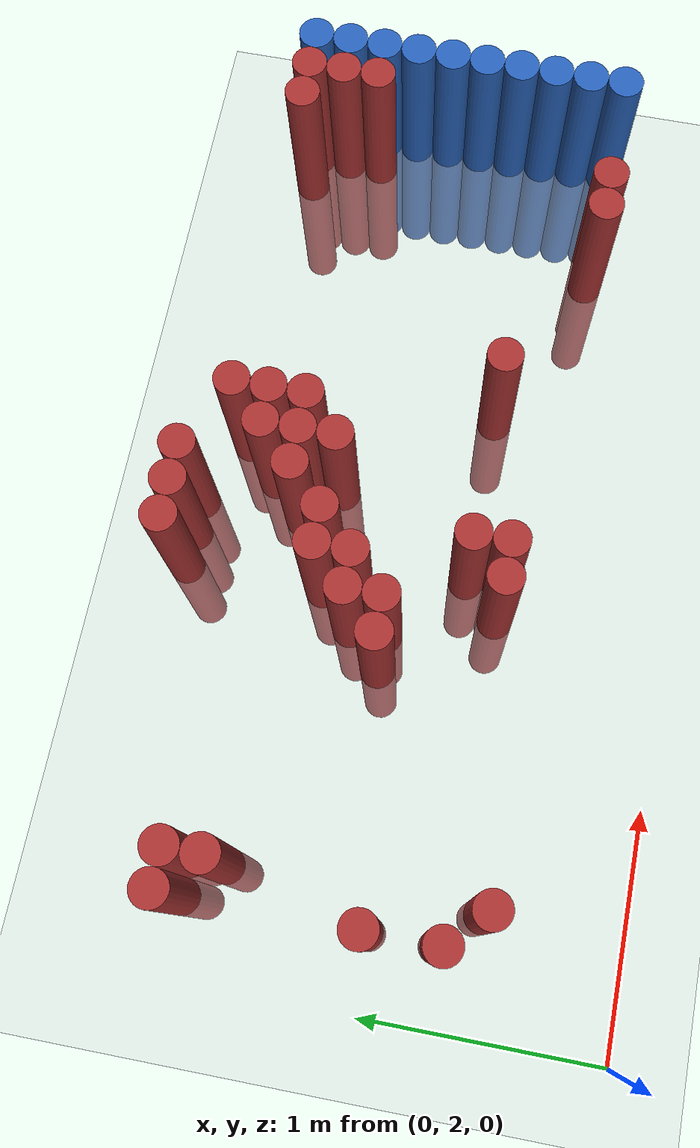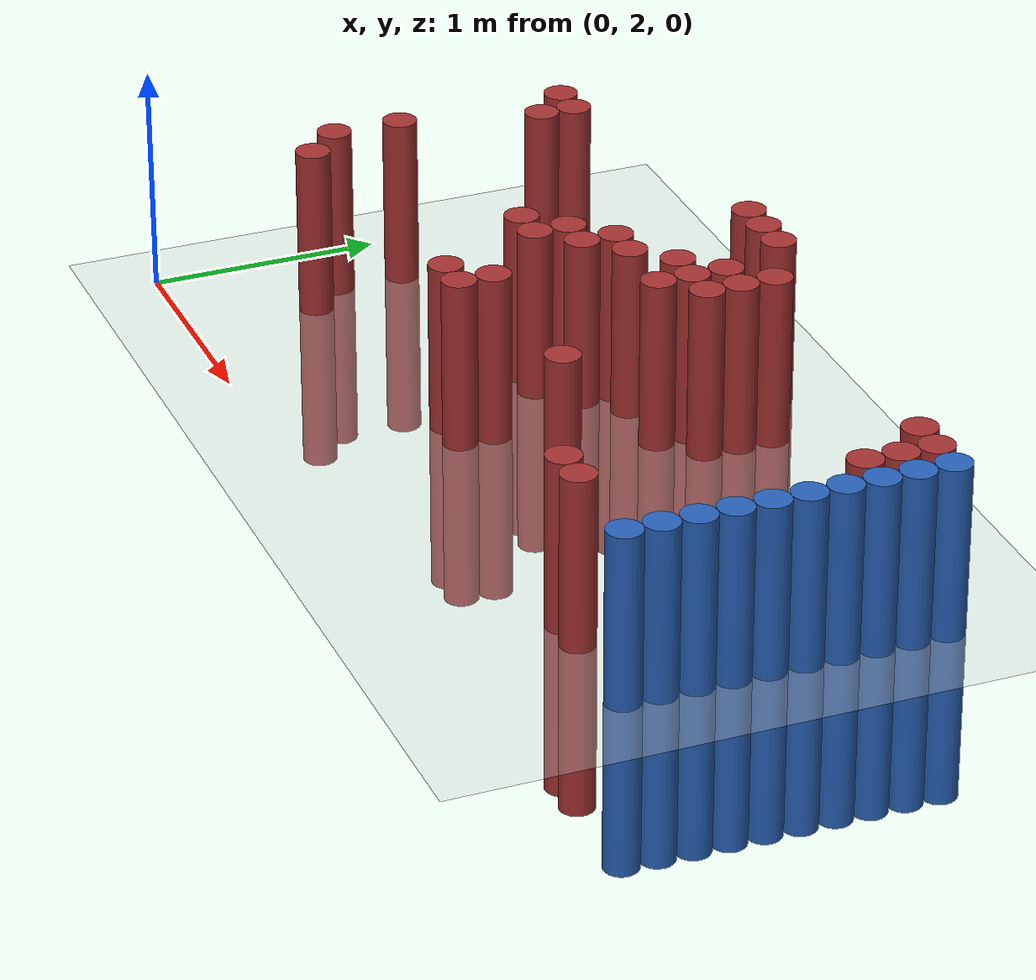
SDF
<sdf version="1.6">
 <world name="default">
  <model name="ground_plane">
   <static>1</static>
   <link name="link">
    <collision name="collision">
     <geometry><plane><normal>0 0 1</normal><size>100 100</size></plane></geometry>
     <surface><friction><ode><mu>100</mu><mu2>50</mu2></ode></friction></surface>
    </collision>
    <visual name="visual">
     <cast_shadows>0</cast_shadows>
     <geometry><plane><normal>0 0 1</normal><size>100 100</size></plane></geometry>
     <material>
      <script><uri>file://media/materials/scripts/gazebo.material</uri><name>Gazebo/Grey</name></script>
     </material>
    </visual>
   </link>
  </model>
  <model name="unit_cylinder_148">
   <static>1</static>
   <pose>3.925000 2.575000 0.000000 0.000000 0.000000 0.000000</pose>
   <link name="link">
    <inertial>
     <mass>1</mass>
     <inertia><ixx>0.145833</ixx><ixy>0</ixy><ixz>0</ixz><iyy>0.145833</iyy><iyz>0</iyz><izz>0.125</izz></inertia>
    </inertial>
    <collision name="collision">
     <geometry><cylinder><radius>0.075000</radius><length>1.5</length></cylinder></geometry>
    </collision>
    <visual name="visual">
     <geometry><cylinder><radius>0.075000</radius><length>1.5</length></cylinder></geometry>
     <material>
      <ambient>0.152000 0.379000 0.720000 1</ambient>
      <diffuse>0.152000 0.379000 0.720000 1</diffuse>
     </material>
     <material>
      <script><name>Gazebo/Grey</name><uri>file://media/materials/scripts/gazebo.material</uri></script>
     </material>
    </visual>
   </link>
  </model>
  <model name="unit_cylinder_150">
   <static>1</static>
   <pose>3.925000 2.725000 0.000000 0.000000 0.000000 0.000000</pose>
   <link name="link">
    <inertial>
     <mass>1</mass>
     <inertia><ixx>0.145833</ixx><ixy>0</ixy><ixz>0</ixz><iyy>0.145833</iyy><iyz>0</iyz><izz>0.125</izz></inertia>
    </inertial>
    <collision name="collision">
     <geometry><cylinder><radius>0.075000</radius><length>1.5</length></cylinder></geometry>
    </collision>
    <visual name="visual">
     <geometry><cylinder><radius>0.075000</radius><length>1.5</length></cylinder></geometry>
     <material>
      <ambient>0.152000 0.379000 0.720000 1</ambient>
      <diffuse>0.152000 0.379000 0.720000 1</diffuse>
     </material>
     <material>
      <script><name>Gazebo/Grey</name><uri>file://media/materials/scripts/gazebo.material</uri></script>
     </material>
    </visual>
   </link>
  </model>
  <model name="unit_cylinder_152">
   <static>1</static>
   <pose>3.925000 2.875000 0.000000 0.000000 0.000000 0.000000</pose>
   <link name="link">
    <inertial>
     <mass>1</mass>
     <inertia><ixx>0.145833</ixx><ixy>0</ixy><ixz>0</ixz><iyy>0.145833</iyy><iyz>0</iyz><izz>0.125</izz></inertia>
    </inertial>
    <collision name="collision">
     <geometry><cylinder><radius>0.075000</radius><length>1.5</length></cylinder></geometry>
    </collision>
    <visual name="visual">
     <geometry><cylinder><radius>0.075000</radius><length>1.5</length></cylinder></geometry>
     <material>
      <ambient>0.152000 0.379000 0.720000 1</ambient>
      <diffuse>0.152000 0.379000 0.720000 1</diffuse>
     </material>
     <material>
      <script><name>Gazebo/Grey</name><uri>file://media/materials/scripts/gazebo.material</uri></script>
     </material>
    </visual>
   </link>
  </model>
  <model name="unit_cylinder_154">
   <static>1</static>
   <pose>3.925000 3.025000 0.000000 0.000000 0.000000 0.000000</pose>
   <link name="link">
    <inertial>
     <mass>1</mass>
     <inertia><ixx>0.145833</ixx><ixy>0</ixy><ixz>0</ixz><iyy>0.145833</iyy><iyz>0</iyz><izz>0.125</izz></inertia>
    </inertial>
    <collision name="collision">
     <geometry><cylinder><radius>0.075000</radius><length>1.5</length></cylinder></geometry>
    </collision>
    <visual name="visual">
     <geometry><cylinder><radius>0.075000</radius><length>1.5</length></cylinder></geometry>
     <material>
      <ambient>0.152000 0.379000 0.720000 1</ambient>
      <diffuse>0.152000 0.379000 0.720000 1</diffuse>
     </material>
     <material>
      <script><name>Gazebo/Grey</name><uri>file://media/materials/scripts/gazebo.material</uri></script>
     </material>
    </visual>
   </link>
  </model>
  <model name="unit_cylinder_156">
   <static>1</static>
   <pose>3.925000 3.175000 0.000000 0.000000 0.000000 0.000000</pose>
   <link name="link">
    <inertial>
     <mass>1</mass>
     <inertia><ixx>0.145833</ixx><ixy>0</ixy><ixz>0</ixz><iyy>0.145833</iyy><iyz>0</iyz><izz>0.125</izz></inertia>
    </inertial>
    <collision name="collision">
     <geometry><cylinder><radius>0.075000</radius><length>1.5</length></cylinder></geometry>
    </collision>
    <visual name="visual">
     <geometry><cylinder><radius>0.075000</radius><length>1.5</length></cylinder></geometry>
     <material>
      <ambient>0.152000 0.379000 0.720000 1</ambient>
      <diffuse>0.152000 0.379000 0.720000 1</diffuse>
     </material>
     <material>
      <script><name>Gazebo/Grey</name><uri>file://media/materials/scripts/gazebo.material</uri></script>
     </material>
    </visual>
   </link>
  </model>
  <model name="unit_cylinder_158">
   <static>1</static>
   <pose>3.925000 3.325000 0.000000 0.000000 0.000000 0.000000</pose>
   <link name="link">
    <inertial>
     <mass>1</mass>
     <inertia><ixx>0.145833</ixx><ixy>0</ixy><ixz>0</ixz><iyy>0.145833</iyy><iyz>0</iyz><izz>0.125</izz></inertia>
    </inertial>
    <collision name="collision">
     <geometry><cylinder><radius>0.075000</radius><length>1.5</length></cylinder></geometry>
    </collision>
    <visual name="visual">
     <geometry><cylinder><radius>0.075000</radius><length>1.5</length></cylinder></geometry>
     <material>
      <ambient>0.152000 0.379000 0.720000 1</ambient>
      <diffuse>0.152000 0.379000 0.720000 1</diffuse>
     </material>
     <material>
      <script><name>Gazebo/Grey</name><uri>file://media/materials/scripts/gazebo.material</uri></script>
     </material>
    </visual>
   </link>
  </model>
  <model name="unit_cylinder_160">
   <static>1</static>
   <pose>3.925000 3.475000 0.000000 0.000000 0.000000 0.000000</pose>
   <link name="link">
    <inertial>
     <mass>1</mass>
     <inertia><ixx>0.145833</ixx><ixy>0</ixy><ixz>0</ixz><iyy>0.145833</iyy><iyz>0</iyz><izz>0.125</izz></inertia>
    </inertial>
    <collision name="collision">
     <geometry><cylinder><radius>0.075000</radius><length>1.5</length></cylinder></geometry>
    </collision>
    <visual name="visual">
     <geometry><cylinder><radius>0.075000</radius><length>1.5</length></cylinder></geometry>
     <material>
      <ambient>0.152000 0.379000 0.720000 1</ambient>
      <diffuse>0.152000 0.379000 0.720000 1</diffuse>
     </material>
     <material>
      <script><name>Gazebo/Grey</name><uri>file://media/materials/scripts/gazebo.material</uri></script>
     </material>
    </visual>
   </link>
  </model>
  <model name="unit_cylinder_162">
   <static>1</static>
   <pose>3.925000 3.625000 0.000000 0.000000 0.000000 0.000000</pose>
   <link name="link">
    <inertial>
     <mass>1</mass>
     <inertia><ixx>0.145833</ixx><ixy>0</ixy><ixz>0</ixz><iyy>0.145833</iyy><iyz>0</iyz><izz>0.125</izz></inertia>
    </inertial>
    <collision name="collision">
     <geometry><cylinder><radius>0.075000</radius><length>1.5</length></cylinder></geometry>
    </collision>
    <visual name="visual">
     <geometry><cylinder><radius>0.075000</radius><length>1.5</length></cylinder></geometry>
     <material>
      <ambient>0.152000 0.379000 0.720000 1</ambient>
      <diffuse>0.152000 0.379000 0.720000 1</diffuse>
     </material>
     <material>
      <script><name>Gazebo/Grey</name><uri>file://media/materials/scripts/gazebo.material</uri></script>
     </material>
    </visual>
   </link>
  </model>
  <model name="unit_cylinder_164">
   <static>1</static>
   <pose>3.925000 3.775000 0.000000 0.000000 0.000000 0.000000</pose>
   <link name="link">
    <inertial>
     <mass>1</mass>
     <inertia><ixx>0.145833</ixx><ixy>0</ixy><ixz>0</ixz><iyy>0.145833</iyy><iyz>0</iyz><izz>0.125</izz></inertia>
    </inertial>
    <collision name="collision">
     <geometry><cylinder><radius>0.075000</radius><length>1.5</length></cylinder></geometry>
    </collision>
    <visual name="visual">
     <geometry><cylinder><radius>0.075000</radius><length>1.5</length></cylinder></geometry>
     <material>
      <ambient>0.152000 0.379000 0.720000 1</ambient>
      <diffuse>0.152000 0.379000 0.720000 1</diffuse>
     </material>
     <material>
      <script><name>Gazebo/Grey</name><uri>file://media/materials/scripts/gazebo.material</uri></script>
     </material>
    </visual>
   </link>
  </model>
  <model name="unit_cylinder_166">
   <static>1</static>
   <pose>3.925000 3.925000 0.000000 0.000000 0.000000 0.000000</pose>
   <link name="link">
    <inertial>
     <mass>1</mass>
     <inertia><ixx>0.145833</ixx><ixy>0</ixy><ixz>0</ixz><iyy>0.145833</iyy><iyz>0</iyz><izz>0.125</izz></inertia>
    </inertial>
    <collision name="collision">
     <geometry><cylinder><radius>0.075000</radius><length>1.5</length></cylinder></geometry>
    </collision>
    <visual name="visual">
     <geometry><cylinder><radius>0.075000</radius><length>1.5</length></cylinder></geometry>
     <material>
      <ambient>0.152000 0.379000 0.720000 1</ambient>
      <diffuse>0.152000 0.379000 0.720000 1</diffuse>
     </material>
     <material>
      <script><name>Gazebo/Grey</name><uri>file://media/materials/scripts/gazebo.material</uri></script>
     </material>
    </visual>
   </link>
  </model>
  <model name="unit_cylinder_380">
   <static>1</static>
   <pose>0.325000 2.725000 0.000000 0.000000 0.000000 0.000000</pose>
   <link name="link">
    <inertial>
     <mass>1</mass>
     <inertia><ixx>0.145833</ixx><ixy>0</ixy><ixz>0</ixz><iyy>0.145833</iyy><iyz>0</iyz><izz>0.125</izz></inertia>
    </inertial>
    <collision name="collision">
     <geometry><cylinder><radius>0.075000</radius><length>1.5</length></cylinder></geometry>
    </collision>
    <visual name="visual">
     <geometry><cylinder><radius>0.075000</radius><length>1.5</length></cylinder></geometry>
     <material>
      <ambient>0.648000 0.192000 0.192000 1</ambient>
      <diffuse>0.648000 0.192000 0.192000 1</diffuse>
     </material>
     <material>
      <script><name>Gazebo/Grey</name><uri>file://media/materials/scripts/gazebo.material</uri></script>
     </material>
    </visual>
   </link>
  </model>
  <model name="unit_cylinder_381">
   <static>1</static>
   <pose>0.325000 3.025000 0.000000 0.000000 0.000000 0.000000</pose>
   <link name="link">
    <inertial>
     <mass>1</mass>
     <inertia><ixx>0.145833</ixx><ixy>0</ixy><ixz>0</ixz><iyy>0.145833</iyy><iyz>0</iyz><izz>0.125</izz></inertia>
    </inertial>
    <collision name="collision">
     <geometry><cylinder><radius>0.075000</radius><length>1.5</length></cylinder></geometry>
    </collision>
    <visual name="visual">
     <geometry><cylinder><radius>0.075000</radius><length>1.5</length></cylinder></geometry>
     <material>
      <ambient>0.648000 0.192000 0.192000 1</ambient>
      <diffuse>0.648000 0.192000 0.192000 1</diffuse>
     </material>
     <material>
      <script><name>Gazebo/Grey</name><uri>file://media/materials/scripts/gazebo.material</uri></script>
     </material>
    </visual>
   </link>
  </model>
  <model name="unit_cylinder_382">
   <static>1</static>
   <pose>0.325000 3.775000 0.000000 0.000000 0.000000 0.000000</pose>
   <link name="link">
    <inertial>
     <mass>1</mass>
     <inertia><ixx>0.145833</ixx><ixy>0</ixy><ixz>0</ixz><iyy>0.145833</iyy><iyz>0</iyz><izz>0.125</izz></inertia>
    </inertial>
    <collision name="collision">
     <geometry><cylinder><radius>0.075000</radius><length>1.5</length></cylinder></geometry>
    </collision>
    <visual name="visual">
     <geometry><cylinder><radius>0.075000</radius><length>1.5</length></cylinder></geometry>
     <material>
      <ambient>0.648000 0.192000 0.192000 1</ambient>
      <diffuse>0.648000 0.192000 0.192000 1</diffuse>
     </material>
     <material>
      <script><name>Gazebo/Grey</name><uri>file://media/materials/scripts/gazebo.material</uri></script>
     </material>
    </visual>
   </link>
  </model>
  <model name="unit_cylinder_387">
   <static>1</static>
   <pose>0.475000 2.575000 0.000000 0.000000 0.000000 0.000000</pose>
   <link name="link">
    <inertial>
     <mass>1</mass>
     <inertia><ixx>0.145833</ixx><ixy>0</ixy><ixz>0</ixz><iyy>0.145833</iyy><iyz>0</iyz><izz>0.125</izz></inertia>
    </inertial>
    <collision name="collision">
     <geometry><cylinder><radius>0.075000</radius><length>1.5</length></cylinder></geometry>
    </collision>
    <visual name="visual">
     <geometry><cylinder><radius>0.075000</radius><length>1.5</length></cylinder></geometry>
     <material>
      <ambient>0.648000 0.192000 0.192000 1</ambient>
      <diffuse>0.648000 0.192000 0.192000 1</diffuse>
     </material>
     <material>
      <script><name>Gazebo/Grey</name><uri>file://media/materials/scripts/gazebo.material</uri></script>
     </material>
    </visual>
   </link>
  </model>
  <model name="unit_cylinder_388">
   <static>1</static>
   <pose>0.475000 3.625000 0.000000 0.000000 0.000000 0.000000</pose>
   <link name="link">
    <inertial>
     <mass>1</mass>
     <inertia><ixx>0.145833</ixx><ixy>0</ixy><ixz>0</ixz><iyy>0.145833</iyy><iyz>0</iyz><izz>0.125</izz></inertia>
    </inertial>
    <collision name="collision">
     <geometry><cylinder><radius>0.075000</radius><length>1.5</length></cylinder></geometry>
    </collision>
    <visual name="visual">
     <geometry><cylinder><radius>0.075000</radius><length>1.5</length></cylinder></geometry>
     <material>
      <ambient>0.648000 0.192000 0.192000 1</ambient>
      <diffuse>0.648000 0.192000 0.192000 1</diffuse>
     </material>
     <material>
      <script><name>Gazebo/Grey</name><uri>file://media/materials/scripts/gazebo.material</uri></script>
     </material>
    </visual>
   </link>
  </model>
  <model name="unit_cylinder_389">
   <static>1</static>
   <pose>0.475000 3.775000 0.000000 0.000000 0.000000 0.000000</pose>
   <link name="link">
    <inertial>
     <mass>1</mass>
     <inertia><ixx>0.145833</ixx><ixy>0</ixy><ixz>0</ixz><iyy>0.145833</iyy><iyz>0</iyz><izz>0.125</izz></inertia>
    </inertial>
    <collision name="collision">
     <geometry><cylinder><radius>0.075000</radius><length>1.5</length></cylinder></geometry>
    </collision>
    <visual name="visual">
     <geometry><cylinder><radius>0.075000</radius><length>1.5</length></cylinder></geometry>
     <material>
      <ambient>0.648000 0.192000 0.192000 1</ambient>
      <diffuse>0.648000 0.192000 0.192000 1</diffuse>
     </material>
     <material>
      <script><name>Gazebo/Grey</name><uri>file://media/materials/scripts/gazebo.material</uri></script>
     </material>
    </visual>
   </link>
  </model>
  <model name="unit_cylinder_408">
   <static>1</static>
   <pose>1.375000 3.175000 0.000000 0.000000 0.000000 0.000000</pose>
   <link name="link">
    <inertial>
     <mass>1</mass>
     <inertia><ixx>0.145833</ixx><ixy>0</ixy><ixz>0</ixz><iyy>0.145833</iyy><iyz>0</iyz><izz>0.125</izz></inertia>
    </inertial>
    <collision name="collision">
     <geometry><cylinder><radius>0.075000</radius><length>1.5</length></cylinder></geometry>
    </collision>
    <visual name="visual">
     <geometry><cylinder><radius>0.075000</radius><length>1.5</length></cylinder></geometry>
     <material>
      <ambient>0.648000 0.192000 0.192000 1</ambient>
      <diffuse>0.648000 0.192000 0.192000 1</diffuse>
     </material>
     <material>
      <script><name>Gazebo/Grey</name><uri>file://media/materials/scripts/gazebo.material</uri></script>
     </material>
    </visual>
   </link>
  </model>
  <model name="unit_cylinder_413">
   <static>1</static>
   <pose>1.525000 3.175000 0.000000 0.000000 0.000000 0.000000</pose>
   <link name="link">
    <inertial>
     <mass>1</mass>
     <inertia><ixx>0.145833</ixx><ixy>0</ixy><ixz>0</ixz><iyy>0.145833</iyy><iyz>0</iyz><izz>0.125</izz></inertia>
    </inertial>
    <collision name="collision">
     <geometry><cylinder><radius>0.075000</radius><length>1.5</length></cylinder></geometry>
    </collision>
    <visual name="visual">
     <geometry><cylinder><radius>0.075000</radius><length>1.5</length></cylinder></geometry>
     <material>
      <ambient>0.648000 0.192000 0.192000 1</ambient>
      <diffuse>0.648000 0.192000 0.192000 1</diffuse>
     </material>
     <material>
      <script><name>Gazebo/Grey</name><uri>file://media/materials/scripts/gazebo.material</uri></script>
     </material>
    </visual>
   </link>
  </model>
  <model name="unit_cylinder_414">
   <static>1</static>
   <pose>1.525000 3.325000 0.000000 0.000000 0.000000 0.000000</pose>
   <link name="link">
    <inertial>
     <mass>1</mass>
     <inertia><ixx>0.145833</ixx><ixy>0</ixy><ixz>0</ixz><iyy>0.145833</iyy><iyz>0</iyz><izz>0.125</izz></inertia>
    </inertial>
    <collision name="collision">
     <geometry><cylinder><radius>0.075000</radius><length>1.5</length></cylinder></geometry>
    </collision>
    <visual name="visual">
     <geometry><cylinder><radius>0.075000</radius><length>1.5</length></cylinder></geometry>
     <material>
      <ambient>0.648000 0.192000 0.192000 1</ambient>
      <diffuse>0.648000 0.192000 0.192000 1</diffuse>
     </material>
     <material>
      <script><name>Gazebo/Grey</name><uri>file://media/materials/scripts/gazebo.material</uri></script>
     </material>
    </visual>
   </link>
  </model>
  <model name="unit_cylinder_424">
   <static>1</static>
   <pose>1.675000 2.725000 0.000000 0.000000 0.000000 0.000000</pose>
   <link name="link">
    <inertial>
     <mass>1</mass>
     <inertia><ixx>0.145833</ixx><ixy>0</ixy><ixz>0</ixz><iyy>0.145833</iyy><iyz>0</iyz><izz>0.125</izz></inertia>
    </inertial>
    <collision name="collision">
     <geometry><cylinder><radius>0.075000</radius><length>1.5</length></cylinder></geometry>
    </collision>
    <visual name="visual">
     <geometry><cylinder><radius>0.075000</radius><length>1.5</length></cylinder></geometry>
     <material>
      <ambient>0.648000 0.192000 0.192000 1</ambient>
      <diffuse>0.648000 0.192000 0.192000 1</diffuse>
     </material>
     <material>
      <script><name>Gazebo/Grey</name><uri>file://media/materials/scripts/gazebo.material</uri></script>
     </material>
    </visual>
   </link>
  </model>
  <model name="unit_cylinder_425">
   <static>1</static>
   <pose>1.675000 3.325000 0.000000 0.000000 0.000000 0.000000</pose>
   <link name="link">
    <inertial>
     <mass>1</mass>
     <inertia><ixx>0.145833</ixx><ixy>0</ixy><ixz>0</ixz><iyy>0.145833</iyy><iyz>0</iyz><izz>0.125</izz></inertia>
    </inertial>
    <collision name="collision">
     <geometry><cylinder><radius>0.075000</radius><length>1.5</length></cylinder></geometry>
    </collision>
    <visual name="visual">
     <geometry><cylinder><radius>0.075000</radius><length>1.5</length></cylinder></geometry>
     <material>
      <ambient>0.648000 0.192000 0.192000 1</ambient>
      <diffuse>0.648000 0.192000 0.192000 1</diffuse>
     </material>
     <material>
      <script><name>Gazebo/Grey</name><uri>file://media/materials/scripts/gazebo.material</uri></script>
     </material>
    </visual>
   </link>
  </model>
  <model name="unit_cylinder_426">
   <static>1</static>
   <pose>1.675000 3.475000 0.000000 0.000000 0.000000 0.000000</pose>
   <link name="link">
    <inertial>
     <mass>1</mass>
     <inertia><ixx>0.145833</ixx><ixy>0</ixy><ixz>0</ixz><iyy>0.145833</iyy><iyz>0</iyz><izz>0.125</izz></inertia>
    </inertial>
    <collision name="collision">
     <geometry><cylinder><radius>0.075000</radius><length>1.5</length></cylinder></geometry>
    </collision>
    <visual name="visual">
     <geometry><cylinder><radius>0.075000</radius><length>1.5</length></cylinder></geometry>
     <material>
      <ambient>0.648000 0.192000 0.192000 1</ambient>
      <diffuse>0.648000 0.192000 0.192000 1</diffuse>
     </material>
     <material>
      <script><name>Gazebo/Grey</name><uri>file://media/materials/scripts/gazebo.material</uri></script>
     </material>
    </visual>
   </link>
  </model>
  <model name="unit_cylinder_427">
   <static>1</static>
   <pose>1.675000 4.075000 0.000000 0.000000 0.000000 0.000000</pose>
   <link name="link">
    <inertial>
     <mass>1</mass>
     <inertia><ixx>0.145833</ixx><ixy>0</ixy><ixz>0</ixz><iyy>0.145833</iyy><iyz>0</iyz><izz>0.125</izz></inertia>
    </inertial>
    <collision name="collision">
     <geometry><cylinder><radius>0.075000</radius><length>1.5</length></cylinder></geometry>
    </collision>
    <visual name="visual">
     <geometry><cylinder><radius>0.075000</radius><length>1.5</length></cylinder></geometry>
     <material>
      <ambient>0.648000 0.192000 0.192000 1</ambient>
      <diffuse>0.648000 0.192000 0.192000 1</diffuse>
     </material>
     <material>
      <script><name>Gazebo/Grey</name><uri>file://media/materials/scripts/gazebo.material</uri></script>
     </material>
    </visual>
   </link>
  </model>
  <model name="unit_cylinder_438">
   <static>1</static>
   <pose>1.825000 2.725000 0.000000 0.000000 0.000000 0.000000</pose>
   <link name="link">
    <inertial>
     <mass>1</mass>
     <inertia><ixx>0.145833</ixx><ixy>0</ixy><ixz>0</ixz><iyy>0.145833</iyy><iyz>0</iyz><izz>0.125</izz></inertia>
    </inertial>
    <collision name="collision">
     <geometry><cylinder><radius>0.075000</radius><length>1.5</length></cylinder></geometry>
    </collision>
    <visual name="visual">
     <geometry><cylinder><radius>0.075000</radius><length>1.5</length></cylinder></geometry>
     <material>
      <ambient>0.648000 0.192000 0.192000 1</ambient>
      <diffuse>0.648000 0.192000 0.192000 1</diffuse>
     </material>
     <material>
      <script><name>Gazebo/Grey</name><uri>file://media/materials/scripts/gazebo.material</uri></script>
     </material>
    </visual>
   </link>
  </model>
  <model name="unit_cylinder_439">
   <static>1</static>
   <pose>1.825000 2.875000 0.000000 0.000000 0.000000 0.000000</pose>
   <link name="link">
    <inertial>
     <mass>1</mass>
     <inertia><ixx>0.145833</ixx><ixy>0</ixy><ixz>0</ixz><iyy>0.145833</iyy><iyz>0</iyz><izz>0.125</izz></inertia>
    </inertial>
    <collision name="collision">
     <geometry><cylinder><radius>0.075000</radius><length>1.5</length></cylinder></geometry>
    </collision>
    <visual name="visual">
     <geometry><cylinder><radius>0.075000</radius><length>1.5</length></cylinder></geometry>
     <material>
      <ambient>0.648000 0.192000 0.192000 1</ambient>
      <diffuse>0.648000 0.192000 0.192000 1</diffuse>
     </material>
     <material>
      <script><name>Gazebo/Grey</name><uri>file://media/materials/scripts/gazebo.material</uri></script>
     </material>
    </visual>
   </link>
  </model>
  <model name="unit_cylinder_440">
   <static>1</static>
   <pose>1.825000 3.475000 0.000000 0.000000 0.000000 0.000000</pose>
   <link name="link">
    <inertial>
     <mass>1</mass>
     <inertia><ixx>0.145833</ixx><ixy>0</ixy><ixz>0</ixz><iyy>0.145833</iyy><iyz>0</iyz><izz>0.125</izz></inertia>
    </inertial>
    <collision name="collision">
     <geometry><cylinder><radius>0.075000</radius><length>1.5</length></cylinder></geometry>
    </collision>
    <visual name="visual">
     <geometry><cylinder><radius>0.075000</radius><length>1.5</length></cylinder></geometry>
     <material>
      <ambient>0.648000 0.192000 0.192000 1</ambient>
      <diffuse>0.648000 0.192000 0.192000 1</diffuse>
     </material>
     <material>
      <script><name>Gazebo/Grey</name><uri>file://media/materials/scripts/gazebo.material</uri></script>
     </material>
    </visual>
   </link>
  </model>
  <model name="unit_cylinder_441">
   <static>1</static>
   <pose>1.825000 4.075000 0.000000 0.000000 0.000000 0.000000</pose>
   <link name="link">
    <inertial>
     <mass>1</mass>
     <inertia><ixx>0.145833</ixx><ixy>0</ixy><ixz>0</ixz><iyy>0.145833</iyy><iyz>0</iyz><izz>0.125</izz></inertia>
    </inertial>
    <collision name="collision">
     <geometry><cylinder><radius>0.075000</radius><length>1.5</length></cylinder></geometry>
    </collision>
    <visual name="visual">
     <geometry><cylinder><radius>0.075000</radius><length>1.5</length></cylinder></geometry>
     <material>
      <ambient>0.648000 0.192000 0.192000 1</ambient>
      <diffuse>0.648000 0.192000 0.192000 1</diffuse>
     </material>
     <material>
      <script><name>Gazebo/Grey</name><uri>file://media/materials/scripts/gazebo.material</uri></script>
     </material>
    </visual>
   </link>
  </model>
  <model name="unit_cylinder_448">
   <static>1</static>
   <pose>1.975000 3.625000 0.000000 0.000000 0.000000 0.000000</pose>
   <link name="link">
    <inertial>
     <mass>1</mass>
     <inertia><ixx>0.145833</ixx><ixy>0</ixy><ixz>0</ixz><iyy>0.145833</iyy><iyz>0</iyz><izz>0.125</izz></inertia>
    </inertial>
    <collision name="collision">
     <geometry><cylinder><radius>0.075000</radius><length>1.5</length></cylinder></geometry>
    </collision>
    <visual name="visual">
     <geometry><cylinder><radius>0.075000</radius><length>1.5</length></cylinder></geometry>
     <material>
      <ambient>0.648000 0.192000 0.192000 1</ambient>
      <diffuse>0.648000 0.192000 0.192000 1</diffuse>
     </material>
     <material>
      <script><name>Gazebo/Grey</name><uri>file://media/materials/scripts/gazebo.material</uri></script>
     </material>
    </visual>
   </link>
  </model>
  <model name="unit_cylinder_449">
   <static>1</static>
   <pose>1.975000 4.075000 0.000000 0.000000 0.000000 0.000000</pose>
   <link name="link">
    <inertial>
     <mass>1</mass>
     <inertia><ixx>0.145833</ixx><ixy>0</ixy><ixz>0</ixz><iyy>0.145833</iyy><iyz>0</iyz><izz>0.125</izz></inertia>
    </inertial>
    <collision name="collision">
     <geometry><cylinder><radius>0.075000</radius><length>1.5</length></cylinder></geometry>
    </collision>
    <visual name="visual">
     <geometry><cylinder><radius>0.075000</radius><length>1.5</length></cylinder></geometry>
     <material>
      <ambient>0.648000 0.192000 0.192000 1</ambient>
      <diffuse>0.648000 0.192000 0.192000 1</diffuse>
     </material>
     <material>
      <script><name>Gazebo/Grey</name><uri>file://media/materials/scripts/gazebo.material</uri></script>
     </material>
    </visual>
   </link>
  </model>
  <model name="unit_cylinder_454">
   <static>1</static>
   <pose>2.125000 3.475000 0.000000 0.000000 0.000000 0.000000</pose>
   <link name="link">
    <inertial>
     <mass>1</mass>
     <inertia><ixx>0.145833</ixx><ixy>0</ixy><ixz>0</ixz><iyy>0.145833</iyy><iyz>0</iyz><izz>0.125</izz></inertia>
    </inertial>
    <collision name="collision">
     <geometry><cylinder><radius>0.075000</radius><length>1.5</length></cylinder></geometry>
    </collision>
    <visual name="visual">
     <geometry><cylinder><radius>0.075000</radius><length>1.5</length></cylinder></geometry>
     <material>
      <ambient>0.648000 0.192000 0.192000 1</ambient>
      <diffuse>0.648000 0.192000 0.192000 1</diffuse>
     </material>
     <material>
      <script><name>Gazebo/Grey</name><uri>file://media/materials/scripts/gazebo.material</uri></script>
     </material>
    </visual>
   </link>
  </model>
  <model name="unit_cylinder_455">
   <static>1</static>
   <pose>2.125000 3.625000 0.000000 0.000000 0.000000 0.000000</pose>
   <link name="link">
    <inertial>
     <mass>1</mass>
     <inertia><ixx>0.145833</ixx><ixy>0</ixy><ixz>0</ixz><iyy>0.145833</iyy><iyz>0</iyz><izz>0.125</izz></inertia>
    </inertial>
    <collision name="collision">
     <geometry><cylinder><radius>0.075000</radius><length>1.5</length></cylinder></geometry>
    </collision>
    <visual name="visual">
     <geometry><cylinder><radius>0.075000</radius><length>1.5</length></cylinder></geometry>
     <material>
      <ambient>0.648000 0.192000 0.192000 1</ambient>
      <diffuse>0.648000 0.192000 0.192000 1</diffuse>
     </material>
     <material>
      <script><name>Gazebo/Grey</name><uri>file://media/materials/scripts/gazebo.material</uri></script>
     </material>
    </visual>
   </link>
  </model>
  <model name="unit_cylinder_456">
   <static>1</static>
   <pose>2.125000 3.775000 0.000000 0.000000 0.000000 0.000000</pose>
   <link name="link">
    <inertial>
     <mass>1</mass>
     <inertia><ixx>0.145833</ixx><ixy>0</ixy><ixz>0</ixz><iyy>0.145833</iyy><iyz>0</iyz><izz>0.125</izz></inertia>
    </inertial>
    <collision name="collision">
     <geometry><cylinder><radius>0.075000</radius><length>1.5</length></cylinder></geometry>
    </collision>
    <visual name="visual">
     <geometry><cylinder><radius>0.075000</radius><length>1.5</length></cylinder></geometry>
     <material>
      <ambient>0.648000 0.192000 0.192000 1</ambient>
      <diffuse>0.648000 0.192000 0.192000 1</diffuse>
     </material>
     <material>
      <script><name>Gazebo/Grey</name><uri>file://media/materials/scripts/gazebo.material</uri></script>
     </material>
    </visual>
   </link>
  </model>
  <model name="unit_cylinder_462">
   <static>1</static>
   <pose>2.275000 3.625000 0.000000 0.000000 0.000000 0.000000</pose>
   <link name="link">
    <inertial>
     <mass>1</mass>
     <inertia><ixx>0.145833</ixx><ixy>0</ixy><ixz>0</ixz><iyy>0.145833</iyy><iyz>0</iyz><izz>0.125</izz></inertia>
    </inertial>
    <collision name="collision">
     <geometry><cylinder><radius>0.075000</radius><length>1.5</length></cylinder></geometry>
    </collision>
    <visual name="visual">
     <geometry><cylinder><radius>0.075000</radius><length>1.5</length></cylinder></geometry>
     <material>
      <ambient>0.648000 0.192000 0.192000 1</ambient>
      <diffuse>0.648000 0.192000 0.192000 1</diffuse>
     </material>
     <material>
      <script><name>Gazebo/Grey</name><uri>file://media/materials/scripts/gazebo.material</uri></script>
     </material>
    </visual>
   </link>
  </model>
  <model name="unit_cylinder_463">
   <static>1</static>
   <pose>2.275000 3.775000 0.000000 0.000000 0.000000 0.000000</pose>
   <link name="link">
    <inertial>
     <mass>1</mass>
     <inertia><ixx>0.145833</ixx><ixy>0</ixy><ixz>0</ixz><iyy>0.145833</iyy><iyz>0</iyz><izz>0.125</izz></inertia>
    </inertial>
    <collision name="collision">
     <geometry><cylinder><radius>0.075000</radius><length>1.5</length></cylinder></geometry>
    </collision>
    <visual name="visual">
     <geometry><cylinder><radius>0.075000</radius><length>1.5</length></cylinder></geometry>
     <material>
      <ambient>0.648000 0.192000 0.192000 1</ambient>
      <diffuse>0.648000 0.192000 0.192000 1</diffuse>
     </material>
     <material>
      <script><name>Gazebo/Grey</name><uri>file://media/materials/scripts/gazebo.material</uri></script>
     </material>
    </visual>
   </link>
  </model>
  <model name="unit_cylinder_464">
   <static>1</static>
   <pose>2.275000 3.925000 0.000000 0.000000 0.000000 0.000000</pose>
   <link name="link">
    <inertial>
     <mass>1</mass>
     <inertia><ixx>0.145833</ixx><ixy>0</ixy><ixz>0</ixz><iyy>0.145833</iyy><iyz>0</iyz><izz>0.125</izz></inertia>
    </inertial>
    <collision name="collision">
     <geometry><cylinder><radius>0.075000</radius><length>1.5</length></cylinder></geometry>
    </collision>
    <visual name="visual">
     <geometry><cylinder><radius>0.075000</radius><length>1.5</length></cylinder></geometry>
     <material>
      <ambient>0.648000 0.192000 0.192000 1</ambient>
      <diffuse>0.648000 0.192000 0.192000 1</diffuse>
     </material>
     <material>
      <script><name>Gazebo/Grey</name><uri>file://media/materials/scripts/gazebo.material</uri></script>
     </material>
    </visual>
   </link>
  </model>
  <model name="unit_cylinder_476">
   <static>1</static>
   <pose>2.575000 2.875000 0.000000 0.000000 0.000000 0.000000</pose>
   <link name="link">
    <inertial>
     <mass>1</mass>
     <inertia><ixx>0.145833</ixx><ixy>0</ixy><ixz>0</ixz><iyy>0.145833</iyy><iyz>0</iyz><izz>0.125</izz></inertia>
    </inertial>
    <collision name="collision">
     <geometry><cylinder><radius>0.075000</radius><length>1.5</length></cylinder></geometry>
    </collision>
    <visual name="visual">
     <geometry><cylinder><radius>0.075000</radius><length>1.5</length></cylinder></geometry>
     <material>
      <ambient>0.648000 0.192000 0.192000 1</ambient>
      <diffuse>0.648000 0.192000 0.192000 1</diffuse>
     </material>
     <material>
      <script><name>Gazebo/Grey</name><uri>file://media/materials/scripts/gazebo.material</uri></script>
     </material>
    </visual>
   </link>
  </model>
  <model name="unit_cylinder_496">
   <static>1</static>
   <pose>3.325000 2.575000 0.000000 0.000000 0.000000 0.000000</pose>
   <link name="link">
    <inertial>
     <mass>1</mass>
     <inertia><ixx>0.145833</ixx><ixy>0</ixy><ixz>0</ixz><iyy>0.145833</iyy><iyz>0</iyz><izz>0.125</izz></inertia>
    </inertial>
    <collision name="collision">
     <geometry><cylinder><radius>0.075000</radius><length>1.5</length></cylinder></geometry>
    </collision>
    <visual name="visual">
     <geometry><cylinder><radius>0.075000</radius><length>1.5</length></cylinder></geometry>
     <material>
      <ambient>0.648000 0.192000 0.192000 1</ambient>
      <diffuse>0.648000 0.192000 0.192000 1</diffuse>
     </material>
     <material>
      <script><name>Gazebo/Grey</name><uri>file://media/materials/scripts/gazebo.material</uri></script>
     </material>
    </visual>
   </link>
  </model>
  <model name="unit_cylinder_499">
   <static>1</static>
   <pose>3.475000 2.575000 0.000000 0.000000 0.000000 0.000000</pose>
   <link name="link">
    <inertial>
     <mass>1</mass>
     <inertia><ixx>0.145833</ixx><ixy>0</ixy><ixz>0</ixz><iyy>0.145833</iyy><iyz>0</iyz><izz>0.125</izz></inertia>
    </inertial>
    <collision name="collision">
     <geometry><cylinder><radius>0.075000</radius><length>1.5</length></cylinder></geometry>
    </collision>
    <visual name="visual">
     <geometry><cylinder><radius>0.075000</radius><length>1.5</length></cylinder></geometry>
     <material>
      <ambient>0.648000 0.192000 0.192000 1</ambient>
      <diffuse>0.648000 0.192000 0.192000 1</diffuse>
     </material>
     <material>
      <script><name>Gazebo/Grey</name><uri>file://media/materials/scripts/gazebo.material</uri></script>
     </material>
    </visual>
   </link>
  </model>
  <model name="unit_cylinder_503">
   <static>1</static>
   <pose>3.625000 3.925000 0.000000 0.000000 0.000000 0.000000</pose>
   <link name="link">
    <inertial>
     <mass>1</mass>
     <inertia><ixx>0.145833</ixx><ixy>0</ixy><ixz>0</ixz><iyy>0.145833</iyy><iyz>0</iyz><izz>0.125</izz></inertia>
    </inertial>
    <collision name="collision">
     <geometry><cylinder><radius>0.075000</radius><length>1.5</length></cylinder></geometry>
    </collision>
    <visual name="visual">
     <geometry><cylinder><radius>0.075000</radius><length>1.5</length></cylinder></geometry>
     <material>
      <ambient>0.648000 0.192000 0.192000 1</ambient>
      <diffuse>0.648000 0.192000 0.192000 1</diffuse>
     </material>
     <material>
      <script><name>Gazebo/Grey</name><uri>file://media/materials/scripts/gazebo.material</uri></script>
     </material>
    </visual>
   </link>
  </model>
  <model name="unit_cylinder_522">
   <static>1</static>
   <pose>3.775000 3.625000 0.000000 0.000000 0.000000 0.000000</pose>
   <link name="link">
    <inertial>
     <mass>1</mass>
     <inertia><ixx>0.145833</ixx><ixy>0</ixy><ixz>0</ixz><iyy>0.145833</iyy><iyz>0</iyz><izz>0.125</izz></inertia>
    </inertial>
    <collision name="collision">
     <geometry><cylinder><radius>0.075000</radius><length>1.5</length></cylinder></geometry>
    </collision>
    <visual name="visual">
     <geometry><cylinder><radius>0.075000</radius><length>1.5</length></cylinder></geometry>
     <material>
      <ambient>0.648000 0.192000 0.192000 1</ambient>
      <diffuse>0.648000 0.192000 0.192000 1</diffuse>
     </material>
     <material>
      <script><name>Gazebo/Grey</name><uri>file://media/materials/scripts/gazebo.material</uri></script>
     </material>
    </visual>
   </link>
  </model>
  <model name="unit_cylinder_523">
   <static>1</static>
   <pose>3.775000 3.775000 0.000000 0.000000 0.000000 0.000000</pose>
   <link name="link">
    <inertial>
     <mass>1</mass>
     <inertia><ixx>0.145833</ixx><ixy>0</ixy><ixz>0</ixz><iyy>0.145833</iyy><iyz>0</iyz><izz>0.125</izz></inertia>
    </inertial>
    <collision name="collision">
     <geometry><cylinder><radius>0.075000</radius><length>1.5</length></cylinder></geometry>
    </collision>
    <visual name="visual">
     <geometry><cylinder><radius>0.075000</radius><length>1.5</length></cylinder></geometry>
     <material>
      <ambient>0.648000 0.192000 0.192000 1</ambient>
      <diffuse>0.648000 0.192000 0.192000 1</diffuse>
     </material>
     <material>
      <script><name>Gazebo/Grey</name><uri>file://media/materials/scripts/gazebo.material</uri></script>
     </material>
    </visual>
   </link>
  </model>
  <model name="unit_cylinder_524">
   <static>1</static>
   <pose>3.775000 3.925000 0.000000 0.000000 0.000000 0.000000</pose>
   <link name="link">
    <inertial>
     <mass>1</mass>
     <inertia><ixx>0.145833</ixx><ixy>0</ixy><ixz>0</ixz><iyy>0.145833</iyy><iyz>0</iyz><izz>0.125</izz></inertia>
    </inertial>
    <collision name="collision">
     <geometry><cylinder><radius>0.075000</radius><length>1.5</length></cylinder></geometry>
    </collision>
    <visual name="visual">
     <geometry><cylinder><radius>0.075000</radius><length>1.5</length></cylinder></geometry>
     <material>
      <ambient>0.648000 0.192000 0.192000 1</ambient>
      <diffuse>0.648000 0.192000 0.192000 1</diffuse>
     </material>
     <material>
      <script><name>Gazebo/Grey</name><uri>file://media/materials/scripts/gazebo.material</uri></script>
     </material>
    </visual>
   </link>
  </model>
  <model name="unit_cylinder_558">
   <static>1</static>
   <pose>3.925000 2.575000 0.000000 0.000000 0.000000 0.000000</pose>
   <link name="link">
    <inertial>
     <mass>1</mass>
     <inertia><ixx>0.145833</ixx><ixy>0</ixy><ixz>0</ixz><iyy>0.145833</iyy><iyz>0</iyz><izz>0.125</izz></inertia>
    </inertial>
    <collision name="collision">
     <geometry><cylinder><radius>0.075000</radius><length>1.5</length></cylinder></geometry>
    </collision>
    <visual name="visual">
     <geometry><cylinder><radius>0.075000</radius><length>1.5</length></cylinder></geometry>
     <material>
      <ambient>0.152000 0.379000 0.720000 1</ambient>
      <diffuse>0.152000 0.379000 0.720000 1</diffuse>
     </material>
     <material>
      <script><name>Gazebo/Grey</name><uri>file://media/materials/scripts/gazebo.material</uri></script>
     </material>
    </visual>
   </link>
  </model>
  <model name="unit_cylinder_559">
   <static>1</static>
   <pose>3.925000 2.725000 0.000000 0.000000 0.000000 0.000000</pose>
   <link name="link">
    <inertial>
     <mass>1</mass>
     <inertia><ixx>0.145833</ixx><ixy>0</ixy><ixz>0</ixz><iyy>0.145833</iyy><iyz>0</iyz><izz>0.125</izz></inertia>
    </inertial>
    <collision name="collision">
     <geometry><cylinder><radius>0.075000</radius><length>1.5</length></cylinder></geometry>
    </collision>
    <visual name="visual">
     <geometry><cylinder><radius>0.075000</radius><length>1.5</length></cylinder></geometry>
     <material>
      <ambient>0.152000 0.379000 0.720000 1</ambient>
      <diffuse>0.152000 0.379000 0.720000 1</diffuse>
     </material>
     <material>
      <script><name>Gazebo/Grey</name><uri>file://media/materials/scripts/gazebo.material</uri></script>
     </material>
    </visual>
   </link>
  </model>
  <model name="unit_cylinder_560">
   <static>1</static>
   <pose>3.925000 2.875000 0.000000 0.000000 0.000000 0.000000</pose>
   <link name="link">
    <inertial>
     <mass>1</mass>
     <inertia><ixx>0.145833</ixx><ixy>0</ixy><ixz>0</ixz><iyy>0.145833</iyy><iyz>0</iyz><izz>0.125</izz></inertia>
    </inertial>
    <collision name="collision">
     <geometry><cylinder><radius>0.075000</radius><length>1.5</length></cylinder></geometry>
    </collision>
    <visual name="visual">
     <geometry><cylinder><radius>0.075000</radius><length>1.5</length></cylinder></geometry>
     <material>
      <ambient>0.152000 0.379000 0.720000 1</ambient>
      <diffuse>0.152000 0.379000 0.720000 1</diffuse>
     </material>
     <material>
      <script><name>Gazebo/Grey</name><uri>file://media/materials/scripts/gazebo.material</uri></script>
     </material>
    </visual>
   </link>
  </model>
  <model name="unit_cylinder_561">
   <static>1</static>
   <pose>3.925000 3.025000 0.000000 0.000000 0.000000 0.000000</pose>
   <link name="link">
    <inertial>
     <mass>1</mass>
     <inertia><ixx>0.145833</ixx><ixy>0</ixy><ixz>0</ixz><iyy>0.145833</iyy><iyz>0</iyz><izz>0.125</izz></inertia>
    </inertial>
    <collision name="collision">
     <geometry><cylinder><radius>0.075000</radius><length>1.5</length></cylinder></geometry>
    </collision>
    <visual name="visual">
     <geometry><cylinder><radius>0.075000</radius><length>1.5</length></cylinder></geometry>
     <material>
      <ambient>0.152000 0.379000 0.720000 1</ambient>
      <diffuse>0.152000 0.379000 0.720000 1</diffuse>
     </material>
     <material>
      <script><name>Gazebo/Grey</name><uri>file://media/materials/scripts/gazebo.material</uri></script>
     </material>
    </visual>
   </link>
  </model>
  <model name="unit_cylinder_562">
   <static>1</static>
   <pose>3.925000 3.175000 0.000000 0.000000 0.000000 0.000000</pose>
   <link name="link">
    <inertial>
     <mass>1</mass>
     <inertia><ixx>0.145833</ixx><ixy>0</ixy><ixz>0</ixz><iyy>0.145833</iyy><iyz>0</iyz><izz>0.125</izz></inertia>
    </inertial>
    <collision name="collision">
     <geometry><cylinder><radius>0.075000</radius><length>1.5</length></cylinder></geometry>
    </collision>
    <visual name="visual">
     <geometry><cylinder><radius>0.075000</radius><length>1.5</length></cylinder></geometry>
     <material>
      <ambient>0.152000 0.379000 0.720000 1</ambient>
      <diffuse>0.152000 0.379000 0.720000 1</diffuse>
     </material>
     <material>
      <script><name>Gazebo/Grey</name><uri>file://media/materials/scripts/gazebo.material</uri></script>
     </material>
    </visual>
   </link>
  </model>
  <model name="unit_cylinder_563">
   <static>1</static>
   <pose>3.925000 3.325000 0.000000 0.000000 0.000000 0.000000</pose>
   <link name="link">
    <inertial>
     <mass>1</mass>
     <inertia><ixx>0.145833</ixx><ixy>0</ixy><ixz>0</ixz><iyy>0.145833</iyy><iyz>0</iyz><izz>0.125</izz></inertia>
    </inertial>
    <collision name="collision">
     <geometry><cylinder><radius>0.075000</radius><length>1.5</length></cylinder></geometry>
    </collision>
    <visual name="visual">
     <geometry><cylinder><radius>0.075000</radius><length>1.5</length></cylinder></geometry>
     <material>
      <ambient>0.152000 0.379000 0.720000 1</ambient>
      <diffuse>0.152000 0.379000 0.720000 1</diffuse>
     </material>
     <material>
      <script><name>Gazebo/Grey</name><uri>file://media/materials/scripts/gazebo.material</uri></script>
     </material>
    </visual>
   </link>
  </model>
  <model name="unit_cylinder_564">
   <static>1</static>
   <pose>3.925000 3.475000 0.000000 0.000000 0.000000 0.000000</pose>
   <link name="link">
    <inertial>
     <mass>1</mass>
     <inertia><ixx>0.145833</ixx><ixy>0</ixy><ixz>0</ixz><iyy>0.145833</iyy><iyz>0</iyz><izz>0.125</izz></inertia>
    </inertial>
    <collision name="collision">
     <geometry><cylinder><radius>0.075000</radius><length>1.5</length></cylinder></geometry>
    </collision>
    <visual name="visual">
     <geometry><cylinder><radius>0.075000</radius><length>1.5</length></cylinder></geometry>
     <material>
      <ambient>0.152000 0.379000 0.720000 1</ambient>
      <diffuse>0.152000 0.379000 0.720000 1</diffuse>
     </material>
     <material>
      <script><name>Gazebo/Grey</name><uri>file://media/materials/scripts/gazebo.material</uri></script>
     </material>
    </visual>
   </link>
  </model>
  <model name="unit_cylinder_565">
   <static>1</static>
   <pose>3.925000 3.625000 0.000000 0.000000 0.000000 0.000000</pose>
   <link name="link">
    <inertial>
     <mass>1</mass>
     <inertia><ixx>0.145833</ixx><ixy>0</ixy><ixz>0</ixz><iyy>0.145833</iyy><iyz>0</iyz><izz>0.125</izz></inertia>
    </inertial>
    <collision name="collision">
     <geometry><cylinder><radius>0.075000</radius><length>1.5</length></cylinder></geometry>
    </collision>
    <visual name="visual">
     <geometry><cylinder><radius>0.075000</radius><length>1.5</length></cylinder></geometry>
     <material>
      <ambient>0.152000 0.379000 0.720000 1</ambient>
      <diffuse>0.152000 0.379000 0.720000 1</diffuse>
     </material>
     <material>
      <script><name>Gazebo/Grey</name><uri>file://media/materials/scripts/gazebo.material</uri></script>
     </material>
    </visual>
   </link>
  </model>
  <model name="unit_cylinder_566">
   <static>1</static>
   <pose>3.925000 3.775000 0.000000 0.000000 0.000000 0.000000</pose>
   <link name="link">
    <inertial>
     <mass>1</mass>
     <inertia><ixx>0.145833</ixx><ixy>0</ixy><ixz>0</ixz><iyy>0.145833</iyy><iyz>0</iyz><izz>0.125</izz></inertia>
    </inertial>
    <collision name="collision">
     <geometry><cylinder><radius>0.075000</radius><length>1.5</length></cylinder></geometry>
    </collision>
    <visual name="visual">
     <geometry><cylinder><radius>0.075000</radius><length>1.5</length></cylinder></geometry>
     <material>
      <ambient>0.152000 0.379000 0.720000 1</ambient>
      <diffuse>0.152000 0.379000 0.720000 1</diffuse>
     </material>
     <material>
      <script><name>Gazebo/Grey</name><uri>file://media/materials/scripts/gazebo.material</uri></script>
     </material>
    </visual>
   </link>
  </model>
  <model name="unit_cylinder_567">
   <static>1</static>
   <pose>3.925000 3.925000 0.000000 0.000000 0.000000 0.000000</pose>
   <link name="link">
    <inertial>
     <mass>1</mass>
     <inertia><ixx>0.145833</ixx><ixy>0</ixy><ixz>0</ixz><iyy>0.145833</iyy><iyz>0</iyz><izz>0.125</izz></inertia>
    </inertial>
    <collision name="collision">
     <geometry><cylinder><radius>0.075000</radius><length>1.5</length></cylinder></geometry>
    </collision>
    <visual name="visual">
     <geometry><cylinder><radius>0.075000</radius><length>1.5</length></cylinder></geometry>
     <material>
      <ambient>0.152000 0.379000 0.720000 1</ambient>
      <diffuse>0.152000 0.379000 0.720000 1</diffuse>
     </material>
     <material>
      <script><name>Gazebo/Grey</name><uri>file://media/materials/scripts/gazebo.material</uri></script>
     </material>
    </visual>
   </link>
  </model>
 </world>
</sdf>
